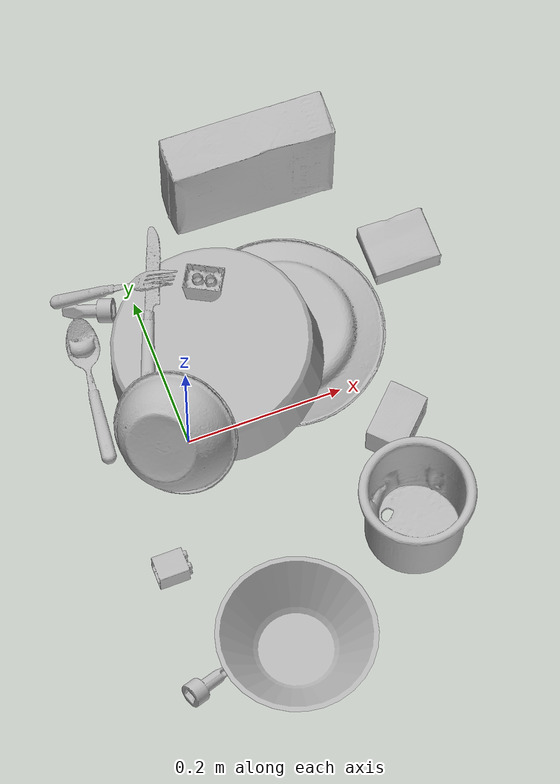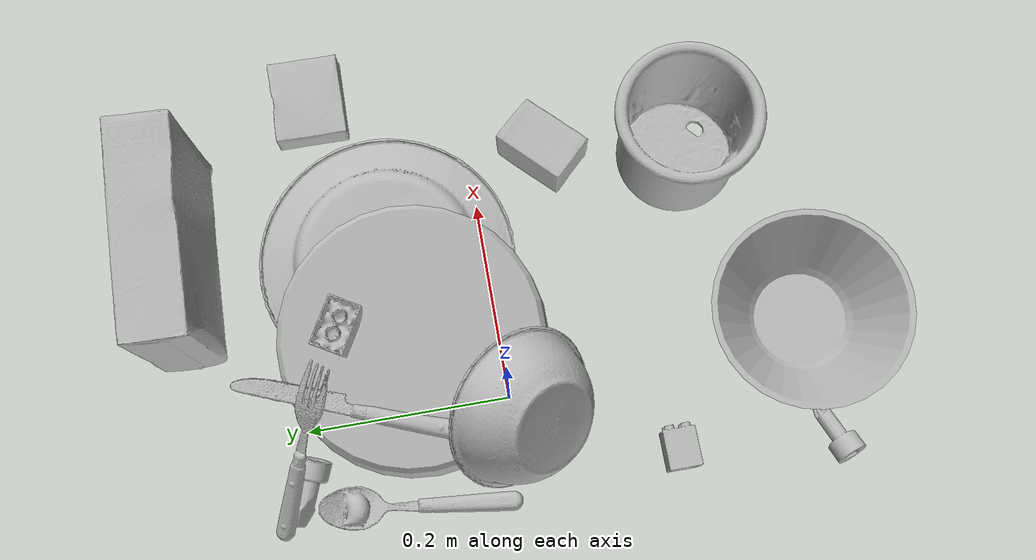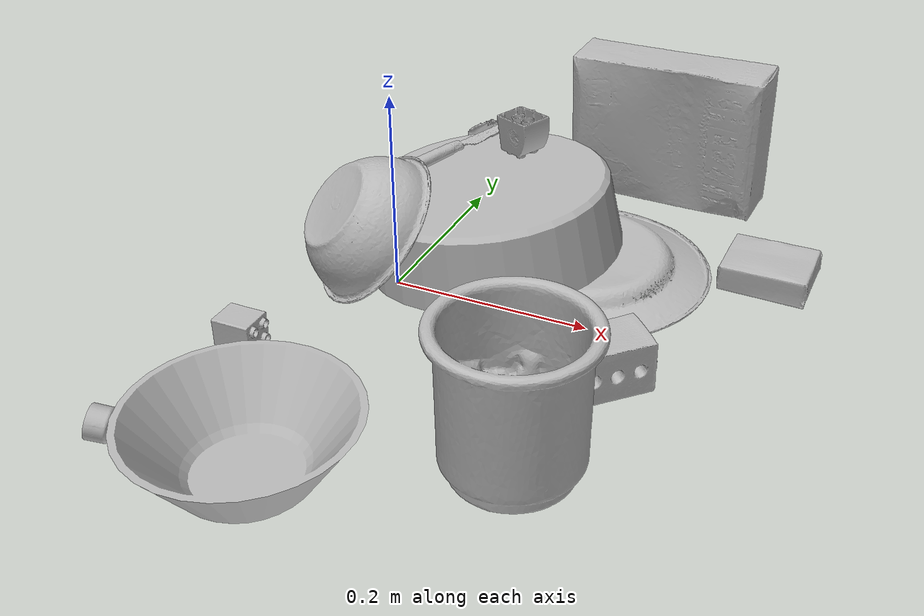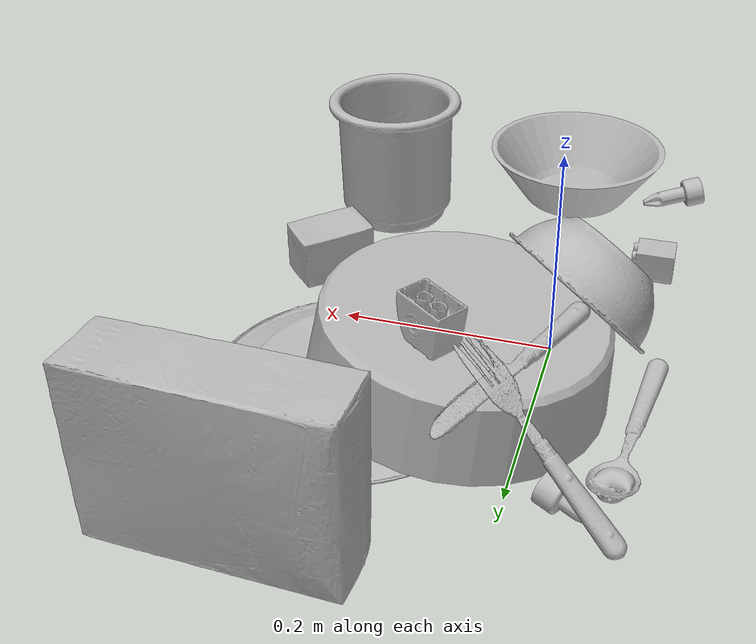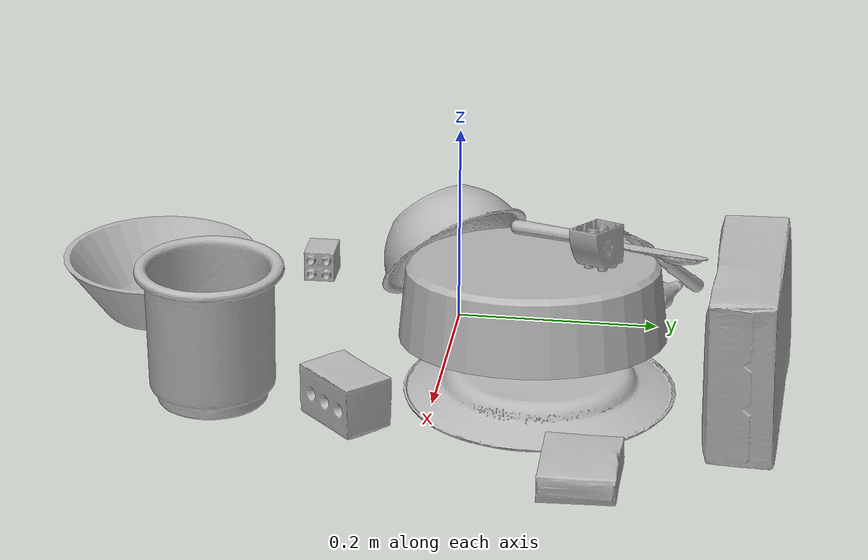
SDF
<sdf version="1.4">
  <world name="default">
    <light name="light1" type="point">
      <pose>0 0 1 0 0 0</pose>
      <diffuse>3 3 3 1</diffuse>
      <specular>3 3 3 1</specular>
    </light>
    <light name="light2" type="point">
      <pose>0 0.5 2 0 0 0</pose>
      <diffuse>1 1 1 1</diffuse>
      <specular>1 1 1 1</specular>
    </light>
    <light name="light3" type="point">
      <pose>0 0.5 2 0 0 0</pose>
      <diffuse>3 3 3 1</diffuse>
      <specular>3 3 3 1</specular>
    </light>
    <scene>
      <ambient>0.7 0.7 0.7</ambient>
    </scene>
    <model name="plate1">
      <link name="link_plate1">
        <collision name="default">
          <geometry>
            <mesh>
              <uri>model://plate/collision_meshes/collision.obj</uri>
              <scale>1.0 1.0 1.0</scale>
            </mesh>
          </geometry>
          <surface>
            <friction>
              <ode>
                <mu>0.5</mu>
                <mu2>0.5</mu2>
              </ode>
            </friction>
          <contact>
        <ode>
            <max_vel>0</max_vel>
            <min_depth>0.0001</min_depth>
            <kp>1e8</kp>
        </ode>
    </contact></surface>
        </collision>
        <visual name="default">
          <geometry>
            <mesh>
              <uri>model://plate/visual_meshes/visual.dae</uri>
              <scale>1.0 1.0 1.0</scale>
            </mesh>
          </geometry>
        </visual>
        <inertial>
          <mass>0.20059238374233246</mass>
          <pose>-0.0006044621695764363 0.00027825910365208983 -0.001056200242601335 0.002218800652723057 -0.0032254723094637602 0.45260588699646775</pose>
          <inertia>
            <ixx>0.00093837525</ixx>
            <iyy>0.0009294</iyy>
            <izz>0.0018353215</izz>
            <ixy>0</ixy>
            <ixz>0</ixz>
            <iyz>0</iyz>
          </inertia>
        </inertial>
      </link>
      <pose>0.15927407145500183 0.09787498414516449 0.013448625802993774 3.14140891424976 -0.003151056522801039 1.6845449473860894</pose>
    </model>
    <model name="plate2">
      <link name="link_plate2">
        <collision name="default">
          <geometry>
            <mesh>
              <uri>model://pan_tefal/collision_meshes/collision.obj</uri>
              <scale>1.0 1.0 1.0</scale>
            </mesh>
          </geometry>
          <surface>
            <friction>
              <ode>
                <mu>0.5</mu>
                <mu2>0.5</mu2>
              </ode>
            </friction>
          <contact>
        <ode>
            <max_vel>0</max_vel>
            <min_depth>0.0001</min_depth>
            <kp>1e8</kp>
        </ode>
    </contact></surface>
        </collision>
        <visual name="default">
          <geometry>
            <mesh>
              <uri>model://pan_tefal/visual_meshes/visual.dae</uri>
              <scale>1.0 1.0 1.0</scale>
            </mesh>
          </geometry>
        </visual>
        <inertial>
          <mass>0.5801199674606323</mass>
          <pose>-0.00018002555589191616 3.279062366345897e-05 -0.008514936082065105 0.0008190222895173471 -0.0003301392673675887 -0.3318501085377774</pose>
          <inertia>
            <ixx>0.00400454</ixx>
            <iyy>0.004030358</iyy>
            <izz>0.0073715877</izz>
            <ixy>0</ixy>
            <ixz>0</ixz>
            <iyz>0</iyz>
          </inertia>
        </inertial>
      </link>
      <pose>0.06412145495414734 0.08112546056509018 0.05304810404777527 3.0383044722383272 -0.05649896308422822 1.279576736969437</pose>
    </model>
    <model name="bowl1">
      <link name="link_bowl1">
        <collision name="default">
          <geometry>
            <mesh>
              <uri>model://bowl/collision_meshes/collision.obj</uri>
              <scale>1.0 1.0 1.0</scale>
            </mesh>
          </geometry>
          <surface>
            <friction>
              <ode>
                <mu>0.5</mu>
                <mu2>0.5</mu2>
              </ode>
            </friction>
          <contact>
        <ode>
            <max_vel>0</max_vel>
            <min_depth>0.0001</min_depth>
            <kp>1e8</kp>
        </ode>
    </contact></surface>
        </collision>
        <visual name="default">
          <geometry>
            <mesh>
              <uri>model://bowl/visual_meshes/visual.dae</uri>
              <scale>1.0 1.0 1.0</scale>
            </mesh>
          </geometry>
        </visual>
        <inertial>
          <mass>0.055578216910362244</mass>
          <pose>0.00020445502013899386 -0.0010302060982212424 -0.000804265437182039 -0.015764048263850368 0.014546844804774466 0.7140432473852318</pose>
          <inertia>
            <ixx>0.00012766755</ixx>
            <iyy>0.000124815</iyy>
            <izz>0.00021478078</izz>
            <ixy>0</ixy>
            <ixz>0</ixz>
            <iyz>0</iyz>
          </inertia>
        </inertial>
      </link>
      <pose>-0.032022830098867416 -0.020756587386131287 0.07764023542404175 2.94460210222934 -0.8322277228017533 1.0355943454576522</pose>
    </model>
    <model name="bowl2">
      <link name="link_bowl2">
        <collision name="default">
          <geometry>
            <mesh>
              <uri>model://bowl_a/collision_meshes/collision.obj</uri>
              <scale>1.0 1.0 1.0</scale>
            </mesh>
          </geometry>
          <surface>
            <friction>
              <ode>
                <mu>0.5</mu>
                <mu2>0.5</mu2>
              </ode>
            </friction>
          <contact>
        <ode>
            <max_vel>0</max_vel>
            <min_depth>0.0001</min_depth>
            <kp>1e8</kp>
        </ode>
    </contact></surface>
        </collision>
        <visual name="default">
          <geometry>
            <mesh>
              <uri>model://bowl_a/visual_meshes/visual.dae</uri>
              <scale>1.0 1.0 1.0</scale>
            </mesh>
          </geometry>
        </visual>
        <inertial>
          <mass>0.31475314497947693</mass>
          <pose>0.00027867438620887697 4.730821092380211e-05 -0.0013765294570475817 -0.0009805369688078041 -0.0010938258688624044 -0.19123886294168949</pose>
          <inertia>
            <ixx>0.00089611666</ixx>
            <iyy>0.00090161816</iyy>
            <izz>0.0015937777</izz>
            <ixy>0</ixy>
            <ixz>0</ixz>
            <iyz>0</iyz>
          </inertia>
        </inertial>
      </link>
      <pose>0.028198646381497383 -0.300701767206192 0.030382992699742317 -8.176367029101737e-07 -1.1985522773966505e-07 -2.852351144375658</pose>
    </model>
    <model name="silverware1">
      <link name="link_silverware1">
        <collision name="default">
          <geometry>
            <mesh>
              <uri>model://spoon/collision_meshes/collision.obj</uri>
              <scale>1.0 1.0 1.0</scale>
            </mesh>
          </geometry>
          <surface>
            <friction>
              <ode>
                <mu>0.5</mu>
                <mu2>0.5</mu2>
              </ode>
            </friction>
          <contact>
        <ode>
            <max_vel>0</max_vel>
            <min_depth>0.0001</min_depth>
            <kp>1e8</kp>
        </ode>
    </contact></surface>
        </collision>
        <visual name="default">
          <geometry>
            <mesh>
              <uri>model://spoon/visual_meshes/visual.dae</uri>
              <scale>1.0 1.0 1.0</scale>
            </mesh>
          </geometry>
        </visual>
        <inertial>
          <mass>0.019504988566040993</mass>
          <pose>-0.005526313092559576 -0.0016034174477681518 -0.0007271654321812093 0.03521671064592188 -0.039065845080026425 0.006150613244710899</pose>
          <inertia>
            <ixx>1.0848988e-06</ixx>
            <iyy>7.421582e-05</iyy>
            <izz>7.4750846e-05</izz>
            <ixy>0</ixy>
            <ixz>0</ixz>
            <iyz>0</iyz>
          </inertia>
        </inertial>
      </link>
      <pose>-0.09036947041749954 0.10186122357845306 0.008385262452065945 0.006731803182746969 0.026893012835867168 1.4441457829923852</pose>
    </model>
    <model name="box1">
      <link name="link_box1">
        <collision name="default">
          <geometry>
            <mesh>
              <uri>model://cracker_box/collision_meshes/collision.obj</uri>
              <scale>1.0 1.0 1.0</scale>
            </mesh>
          </geometry>
          <surface>
            <friction>
              <ode>
                <mu>0.5</mu>
                <mu2>0.5</mu2>
              </ode>
            </friction>
          <contact>
        <ode>
            <max_vel>0</max_vel>
            <min_depth>0.0001</min_depth>
            <kp>1e8</kp>
        </ode>
    </contact></surface>
        </collision>
        <visual name="default">
          <geometry>
            <mesh>
              <uri>model://cracker_box/visual_meshes/visual.dae</uri>
              <scale>1.0 1.0 1.0</scale>
            </mesh>
          </geometry>
        </visual>
        <inertial>
          <mass>2.5078790187835693</mass>
          <pose>0.0009464150061830878 0.00025434247800149024 -0.0017029535956680775 -0.00031620768203149627 -0.01110648960041945 0.002546794303792924</pose>
          <inertia>
            <ixx>0.0063789245</ixx>
            <iyy>0.010532858</iyy>
            <izz>0.015031353</izz>
            <ixy>0</ixy>
            <ixz>0</ixz>
            <iyz>0</iyz>
          </inertia>
        </inertial>
      </link>
      <pose>0.18649545311927795 0.29356759786605835 0.08213837444782257 -1.6032003568587678 0.0037866030076331965 3.1014551861973847</pose>
    </model>
    <model name="box2">
      <link name="link_box2">
        <collision name="default">
          <geometry>
            <mesh>
              <uri>model://gelatin_box/collision_meshes/collision.obj</uri>
              <scale>1.0 1.0 1.0</scale>
            </mesh>
          </geometry>
          <surface>
            <friction>
              <ode>
                <mu>0.5</mu>
                <mu2>0.5</mu2>
              </ode>
            </friction>
          <contact>
        <ode>
            <max_vel>0</max_vel>
            <min_depth>0.0001</min_depth>
            <kp>1e8</kp>
        </ode>
    </contact></surface>
        </collision>
        <visual name="default">
          <geometry>
            <mesh>
              <uri>model://gelatin_box/visual_meshes/visual.dae</uri>
              <scale>1.0 1.0 1.0</scale>
            </mesh>
          </geometry>
        </visual>
        <inertial>
          <mass>0.1847851723432541</mass>
          <pose>0.0004319618456065655 0.00011156872642459348 -0.0003640321083366871 -0.001050372098056681 -0.004755818221834168 0.016440563197305347</pose>
          <inertia>
            <ixx>0.00013044327</ixx>
            <iyy>9.317494e-05</iyy>
            <izz>0.0001985637</izz>
            <ixy>0</ixy>
            <ixz>0</ixz>
            <iyz>0</iyz>
          </inertia>
        </inertial>
      </link>
      <pose>0.3377278447151184 0.15314428508281708 0.015168308280408382 0.005597494142010015 -0.007304549621472875 1.555498651869029</pose>
    </model>
    <model name="cup1">
      <link name="link_cup1">
        <collision name="default">
          <geometry>
            <mesh>
              <uri>model://d_cups/collision_meshes/collision.obj</uri>
              <scale>2.0 2.0 2.0</scale>
            </mesh>
          </geometry>
          <surface>
            <friction>
              <ode>
                <mu>0.5</mu>
                <mu2>0.5</mu2>
              </ode>
            </friction>
          <contact>
        <ode>
            <max_vel>0</max_vel>
            <min_depth>0.0001</min_depth>
            <kp>1e8</kp>
        </ode>
    </contact></surface>
        </collision>
        <visual name="default">
          <geometry>
            <mesh>
              <uri>model://d_cups/visual_meshes/visual.dae</uri>
              <scale>2.0 2.0 2.0</scale>
            </mesh>
          </geometry>
        </visual>
        <inertial>
          <mass>0.47328615188598633</mass>
          <pose>0.0016136143822222948 0.0038234798703342676 -0.004533303435891867 0.24012870248045765 -0.247092443015796 0.5942312682521343</pose>
          <inertia>
            <ixx>0.0015850074</ixx>
            <iyy>0.0015804201</iyy>
            <izz>0.0014347013</izz>
            <ixy>0</ixy>
            <ixz>0</ixz>
            <iyz>0</iyz>
          </inertia>
        </inertial>
      </link>
      <pose>0.21528728306293488 -0.20875410735607147 0.06931798160076141 -4.491118940930001e-09 -6.306054504883948e-08 1.7129945370843347</pose>
    </model>
    <model name="silverware2">
      <link name="link_silverware2">
        <collision name="default">
          <geometry>
            <mesh>
              <uri>model://knife/collision_meshes/collision.obj</uri>
              <scale>1.0 1.0 1.0</scale>
            </mesh>
          </geometry>
          <surface>
            <friction>
              <ode>
                <mu>0.5</mu>
                <mu2>0.5</mu2>
              </ode>
            </friction>
          <contact>
        <ode>
            <max_vel>0</max_vel>
            <min_depth>0.0001</min_depth>
            <kp>1e8</kp>
        </ode>
    </contact></surface>
        </collision>
        <visual name="default">
          <geometry>
            <mesh>
              <uri>model://knife/visual_meshes/visual.dae</uri>
              <scale>1.0 1.0 1.0</scale>
            </mesh>
          </geometry>
        </visual>
        <inertial>
          <mass>0.03430156037211418</mass>
          <pose>-0.02378525398671627 0.0015275129117071629 5.062017953605391e-05 0.07305950900181668 0.01724842494985857 -0.007409825116106198</pose>
          <inertia>
            <ixx>9.736174e-07</ixx>
            <iyy>0.00013178105</iyy>
            <izz>0.00013209462</izz>
            <ixy>0</ixy>
            <ixz>0</ixz>
            <iyz>0</iyz>
          </inertia>
        </inertial>
      </link>
      <pose>0.007056651636958122 0.14806397259235382 0.09130813926458359 -0.1279463722147678 -0.044343449882685716 1.1951975002683675</pose>
    </model>
    <model name="silverware3">
      <link name="link_silverware3">
        <collision name="default">
          <geometry>
            <mesh>
              <uri>model://fork/collision_meshes/collision.obj</uri>
              <scale>1.0 1.0 1.0</scale>
            </mesh>
          </geometry>
          <surface>
            <friction>
              <ode>
                <mu>0.5</mu>
                <mu2>0.5</mu2>
              </ode>
            </friction>
          <contact>
        <ode>
            <max_vel>0</max_vel>
            <min_depth>0.0001</min_depth>
            <kp>1e8</kp>
        </ode>
    </contact></surface>
        </collision>
        <visual name="default">
          <geometry>
            <mesh>
              <uri>model://fork/visual_meshes/visual.dae</uri>
              <scale>1.0 1.0 1.0</scale>
            </mesh>
          </geometry>
        </visual>
        <inertial>
          <mass>0.014111565425992012</mass>
          <pose>-0.02957005426287651 0.0004658825055230409 0.00032188615296036005 -0.01355195006397287 -0.010977841645129428 0.014453906946454091</pose>
          <inertia>
            <ixx>4.9469025e-07</ixx>
            <iyy>3.684124e-05</iyy>
            <izz>3.7062495e-05</izz>
            <ixy>0</ixy>
            <ixz>0</ixz>
            <iyz>0</iyz>
          </inertia>
        </inertial>
      </link>
      <pose>-0.0274349395185709 0.20093481242656708 0.06351537257432938 3.0017604527660917 -0.6648589935922603 -0.4712969275931011</pose>
    </model>
    <model name="toy1">
      <link name="link_toy1">
        <collision name="default">
          <geometry>
            <mesh>
              <uri>model://b_lego_duplo/collision_meshes/collision.obj</uri>
              <scale>1.0 1.0 1.0</scale>
            </mesh>
          </geometry>
          <surface>
            <friction>
              <ode>
                <mu>0.5</mu>
                <mu2>0.5</mu2>
              </ode>
            </friction>
          <contact>
        <ode>
            <max_vel>0</max_vel>
            <min_depth>0.0001</min_depth>
            <kp>1e8</kp>
        </ode>
    </contact></surface>
        </collision>
        <visual name="default">
          <geometry>
            <mesh>
              <uri>model://b_lego_duplo/visual_meshes/visual.dae</uri>
              <scale>1.0 1.0 1.0</scale>
            </mesh>
          </geometry>
        </visual>
        <inertial>
          <mass>0.029451588168740273</mass>
          <pose>-0.00011053002526750788 -9.152366146736313e-06 0.0019294293597340584 -0.03749525813168218 -0.026353287435260622 0.45191626186006195</pose>
          <inertia>
            <ixx>6.0274892e-06</ixx>
            <iyy>6.0680068e-06</iyy>
            <izz>5.3702943e-06</izz>
            <ixy>0</ixy>
            <ixz>0</ixz>
            <iyz>0</iyz>
          </inertia>
        </inertial>
      </link>
      <pose>-0.07696045935153961 -0.154888316988945 0.016180744394659996 0.0423942403440066 -1.5623860258951003 3.1099972740523367</pose>
    </model>
    <model name="toy2">
      <link name="link_toy2">
        <collision name="default">
          <geometry>
            <mesh>
              <uri>model://foam_brick/collision_meshes/collision.obj</uri>
              <scale>1.0 1.0 1.0</scale>
            </mesh>
          </geometry>
          <surface>
            <friction>
              <ode>
                <mu>0.5</mu>
                <mu2>0.5</mu2>
              </ode>
            </friction>
          <contact>
        <ode>
            <max_vel>0</max_vel>
            <min_depth>0.0001</min_depth>
            <kp>1e8</kp>
        </ode>
    </contact></surface>
        </collision>
        <visual name="default">
          <geometry>
            <mesh>
              <uri>model://foam_brick/visual_meshes/visual.dae</uri>
              <scale>1.0 1.0 1.0</scale>
            </mesh>
          </geometry>
        </visual>
        <inertial>
          <mass>0.2443593144416809</mass>
          <pose>-0.0002522472059354186 0.00034584393142722547 -0.0002532101352699101 -0.2940184651969868 0.017274440266988163 -0.0007449890747987857</pose>
          <inertia>
            <ixx>0.00010674072</ixx>
            <iyy>0.00017041703</iyy>
            <izz>0.00017258283</izz>
            <ixy>0</ixy>
            <ixz>0</ixz>
            <iyz>0</iyz>
          </inertia>
        </inertial>
      </link>
      <pose>0.24465200304985046 -0.07550399750471115 0.02591070346534252 1.5828202006520424 -0.00037559166565890125 0.7912859978622734</pose>
    </model>
    <model name="toy3">
      <link name="link_toy3">
        <collision name="default">
          <geometry>
            <mesh>
              <uri>model://d_lego_duplo/collision_meshes/collision.obj</uri>
              <scale>1.0 1.0 1.0</scale>
            </mesh>
          </geometry>
          <surface>
            <friction>
              <ode>
                <mu>0.5</mu>
                <mu2>0.5</mu2>
              </ode>
            </friction>
          <contact>
        <ode>
            <max_vel>0</max_vel>
            <min_depth>0.0001</min_depth>
            <kp>1e8</kp>
        </ode>
    </contact></surface>
        </collision>
        <visual name="default">
          <geometry>
            <mesh>
              <uri>model://d_lego_duplo/visual_meshes/visual.dae</uri>
              <scale>1.0 1.0 1.0</scale>
            </mesh>
          </geometry>
        </visual>
        <inertial>
          <mass>0.033699363470077515</mass>
          <pose>0.002830563113093376 0.0001636613014852628 0.0008589802891947329 0.08010879334546937 -0.38355231252286476 0.0010296922462193392</pose>
          <inertia>
            <ixx>6.5236977e-06</ixx>
            <iyy>9.258897e-06</iyy>
            <izz>8.928908e-06</izz>
            <ixy>0</ixy>
            <ixz>0</ixz>
            <iyz>0</iyz>
          </inertia>
        </inertial>
      </link>
      <pose>0.076102115213871 0.14247268438339233 0.11638318002223969 3.0641949492067746 0.10111868661357519 2.60588854418372</pose>
    </model>
    <model name="toy4">
      <link name="link_toy4">
        <collision name="default">
          <geometry>
            <mesh>
              <uri>model://d_toy_airplane/collision_meshes/collision.obj</uri>
              <scale>1.0 1.0 1.0</scale>
            </mesh>
          </geometry>
          <surface>
            <friction>
              <ode>
                <mu>0.5</mu>
                <mu2>0.5</mu2>
              </ode>
            </friction>
          <contact>
        <ode>
            <max_vel>0</max_vel>
            <min_depth>0.0001</min_depth>
            <kp>1e8</kp>
        </ode>
    </contact></surface>
        </collision>
        <visual name="default">
          <geometry>
            <mesh>
              <uri>model://d_toy_airplane/visual_meshes/visual.dae</uri>
              <scale>1.0 1.0 1.0</scale>
            </mesh>
          </geometry>
        </visual>
        <inertial>
          <mass>0.016584575176239014</mass>
          <pose>9.410303027834743e-05 -5.809338472317904e-05 -0.01172809861600399 0.0002669776058846709 0.004678969238403601 0.5194647440200774</pose>
          <inertia>
            <ixx>4.9717323e-06</ixx>
            <iyy>4.975482e-06</iyy>
            <izz>1.5009987e-06</izz>
            <ixy>0</ixy>
            <ixz>0</ixz>
            <iyz>0</iyz>
          </inertia>
        </inertial>
      </link>
      <pose>-0.08312947303056717 -0.305999755859375 0.011234677396714687 1.794410682179171 -0.19707349368921867 1.8763733051735436</pose>
    </model>
    <model name="toy5">
      <link name="link_toy5">
        <collision name="default">
          <geometry>
            <mesh>
              <uri>model://e_toy_airplane/collision_meshes/collision.obj</uri>
              <scale>1.0 1.0 1.0</scale>
            </mesh>
          </geometry>
          <surface>
            <friction>
              <ode>
                <mu>0.5</mu>
                <mu2>0.5</mu2>
              </ode>
            </friction>
          <contact>
        <ode>
            <max_vel>0</max_vel>
            <min_depth>0.0001</min_depth>
            <kp>1e8</kp>
        </ode>
    </contact></surface>
        </collision>
        <visual name="default">
          <geometry>
            <mesh>
              <uri>model://e_toy_airplane/visual_meshes/visual.dae</uri>
              <scale>1.0 1.0 1.0</scale>
            </mesh>
          </geometry>
        </visual>
        <inertial>
          <mass>0.01714155077934265</mass>
          <pose>0.00011740483023459092 -2.2482887288788334e-05 -0.011187203228473663 0.005518467343725363 0.009228313895921611 0.15041273076279138</pose>
          <inertia>
            <ixx>5.2317982e-06</ixx>
            <iyy>5.178279e-06</iyy>
            <izz>1.5723607e-06</izz>
            <ixy>0</ixy>
            <ixz>0</ixz>
            <iyz>0</iyz>
          </inertia>
        </inertial>
      </link>
      <pose>-0.058911025524139404 0.20622789859771729 0.012002027593553066 1.7819631807707605 -0.5838963722621436 -2.0995608129534635</pose>
    </model>
  <physics type="ode">
      <max_contacts>50</max_contacts>
      <ode>
        <solver>
          <type>quick</type>
          <iters>75</iters>
        </solver>
        <constraints>
          <contact_max_correcting_vel>0</contact_max_correcting_vel>
          <contact_surface_layer>0</contact_surface_layer>
        </constraints>
      </ode>
    </physics></world>
</sdf>
